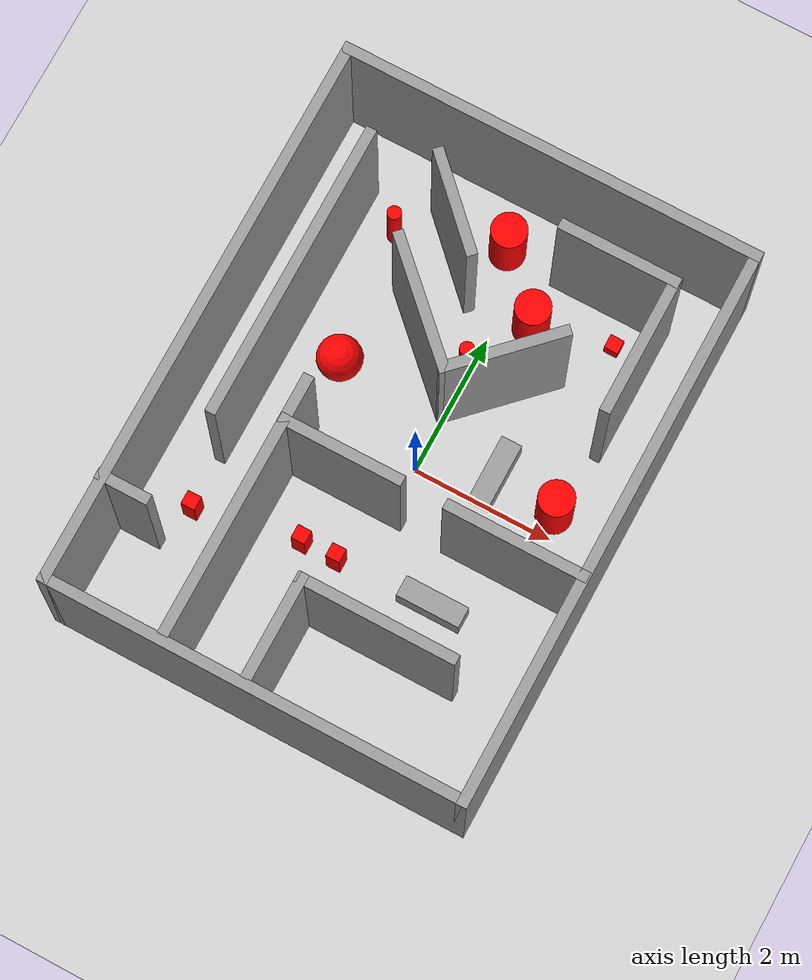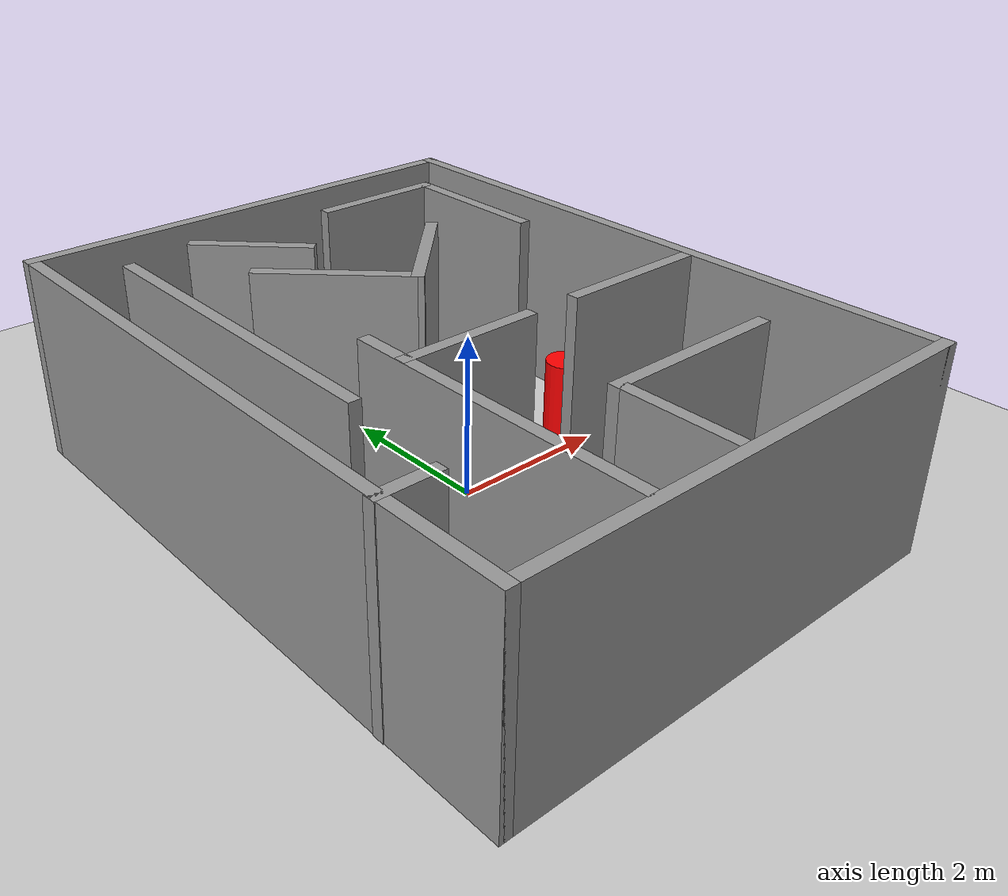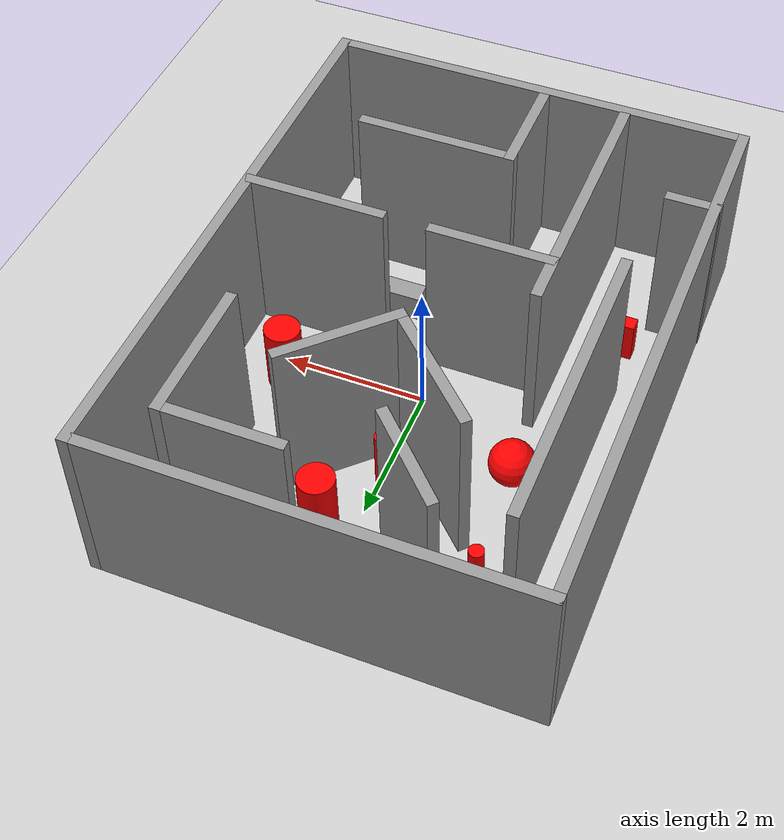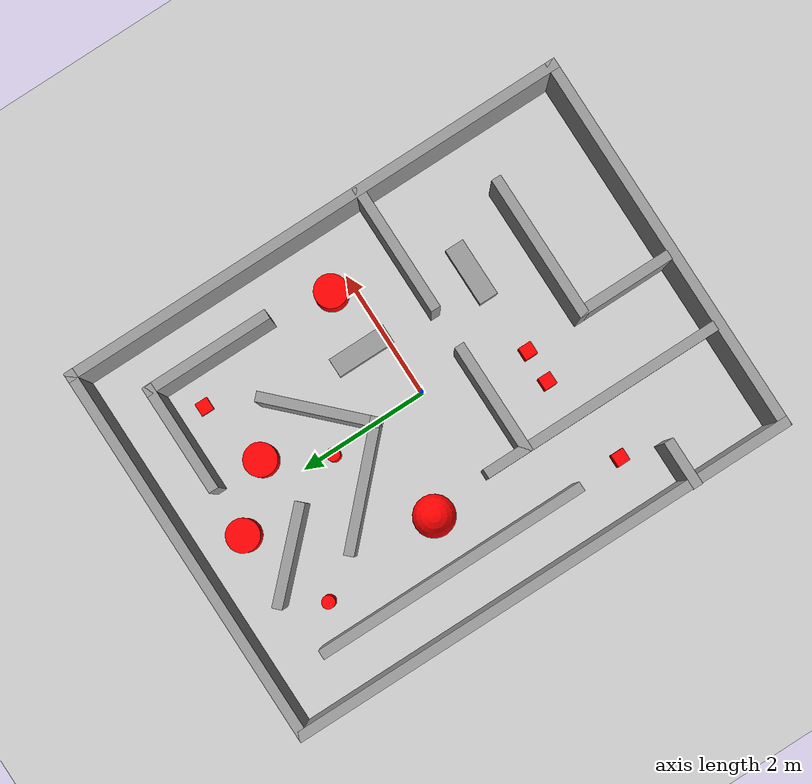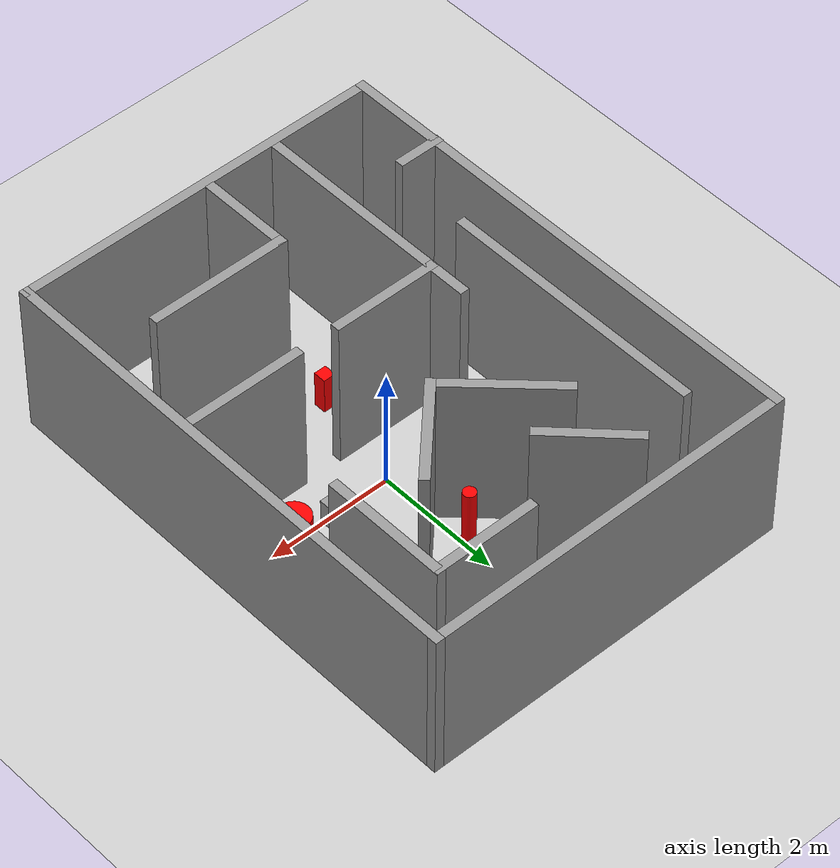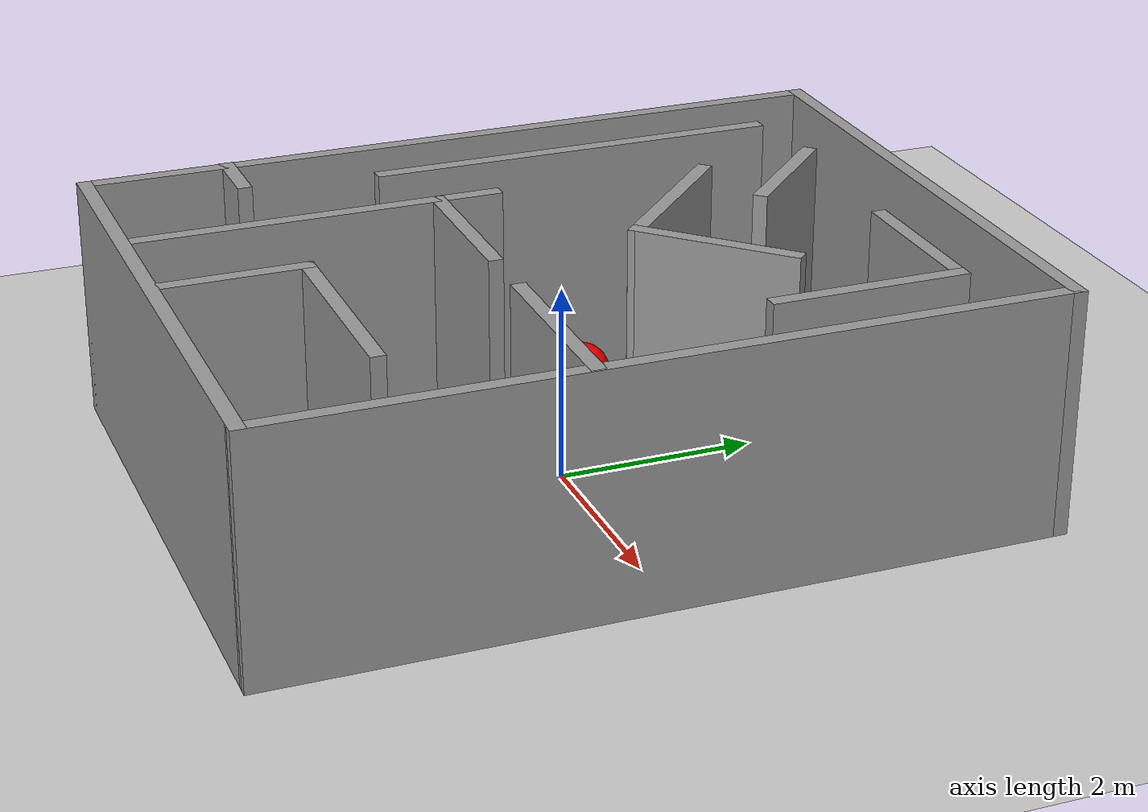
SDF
<sdf version="1.7">
 <world name="default">
  <light name="sun" type="directional">
   <pose>0 0 10 0 -0 0</pose>
   <diffuse>0.8 0.8 0.8 1</diffuse>
   <specular>0.2 0.2 0.2 1</specular>
   <attenuation>
    <range>1000</range>
    <constant>0.9</constant>
    <linear>0.01</linear>
    <quadratic>0.001</quadratic>
   </attenuation>
   <direction>-0.5 0.1 -0.9</direction>
   <spot><inner_angle>0</inner_angle><outer_angle>0</outer_angle><falloff>0</falloff></spot>
  </light>
  <model name="ground_plane">
   <static>1</static>
   <link name="link">
    <collision name="collision">
     <geometry><plane><normal>0 0 1</normal><size>100 100</size></plane></geometry>
     <surface>
      <contact><collide_bitmask>65535</collide_bitmask></contact>
      <friction><ode><mu>100</mu><mu2>50</mu2></ode></friction>
     </surface>
    </collision>
    <visual name="visual">
     <cast_shadows>0</cast_shadows>
     <geometry><plane><normal>0 0 1</normal><size>100 100</size></plane></geometry>
     <material>
      <script><uri>file://media/materials/scripts/gazebo.material</uri><name>Gazebo/Grey</name></script>
     </material>
    </visual>
   </link>
  </model>
  <gravity>0 0 -9.8</gravity>
  <magnetic_field>6e-06 2.3e-05 -4.2e-05</magnetic_field>
  <atmosphere type="adiabatic"/>
  <physics type="ode">
   <max_step_size>0.001</max_step_size>
   <real_time_factor>1</real_time_factor>
   <real_time_update_rate>1000</real_time_update_rate>
  </physics>
  <scene><ambient>0.4 0.4 0.4 1</ambient><background>0.7 0.7 0.7 1</background><shadows>1</shadows></scene>
  <spherical_coordinates>
   <surface_model>EARTH_WGS84</surface_model>
   <latitude_deg>0</latitude_deg>
   <longitude_deg>0</longitude_deg>
   <elevation>0</elevation>
   <heading_deg>0</heading_deg>
  </spherical_coordinates>
  <model name="env02">
   <pose>-0.178481 0.02134 0 0 -0 0</pose>
   <link name="Wall_13">
    <collision name="Wall_13_Collision">
     <geometry><box><size>1.5 0.15 2.5</size></box></geometry>
     <pose>0 0 1.25 0 -0 0</pose>
    </collision>
    <visual name="Wall_13_Visual">
     <pose>0 0 1.25 0 -0 0</pose>
     <geometry><box><size>1.5 0.15 2.5</size></box></geometry>
     <material>
      <script><uri>file://media/materials/scripts/gazebo.material</uri><name>Gazebo/Grey</name></script>
      <ambient>1 1 1 1</ambient>
     </material>
     <meta><layer>0</layer></meta>
    </visual>
    <pose>-0.751841 2.75701 0 0 -0 -0.785398</pose>
   </link>
   <link name="Wall_2">
    <collision name="Wall_2_Collision">
     <geometry><box><size>8 0.15 2.5</size></box></geometry>
     <pose>0 0 1.25 0 -0 0</pose>
    </collision>
    <visual name="Wall_2_Visual">
     <pose>0 0 1.25 0 -0 0</pose>
     <geometry><box><size>8 0.15 2.5</size></box></geometry>
     <material>
      <script><uri>file://media/materials/scripts/gazebo.material</uri><name>Gazebo/Grey</name></script>
      <ambient>1 1 1 1</ambient>
     </material>
     <meta><layer>0</layer></meta>
    </visual>
    <pose>-2.91996 -0 0 0 -0 -1.5708</pose>
   </link>
   <link name="Wall_22">
    <collision name="Wall_22_Collision">
     <geometry><box><size>2 0.15 2.5</size></box></geometry>
     <pose>0 0 1.25 0 -0 0</pose>
    </collision>
    <visual name="Wall_22_Visual">
     <pose>0 0 1.25 0 -0 0</pose>
     <geometry><box><size>2 0.15 2.5</size></box></geometry>
     <material>
      <script><uri>file://media/materials/scripts/gazebo.material</uri><name>Gazebo/Grey</name></script>
      <ambient>1 1 1 1</ambient>
     </material>
     <meta><layer>0</layer></meta>
    </visual>
    <pose>2.18448 2.2064 0 0 -0 -1.5708</pose>
   </link>
   <link name="Wall_24">
    <collision name="Wall_24_Collision">
     <geometry><box><size>1.70028 0.15 2.5</size></box></geometry>
     <pose>0 0 1.25 0 -0 0</pose>
    </collision>
    <visual name="Wall_24_Visual">
     <pose>0 0 1.25 0 -0 0</pose>
     <geometry><box><size>1.70028 0.15 2.5</size></box></geometry>
     <material>
      <script><uri>file://media/materials/scripts/gazebo.material</uri><name>Gazebo/Grey</name></script>
      <ambient>1 1 1 1</ambient>
     </material>
     <meta><layer>0</layer></meta>
    </visual>
    <pose>1.39939 3.13139 0 0 -0 3.14159</pose>
   </link>
   <link name="Wall_26">
    <collision name="Wall_26_Collision">
     <geometry><box><size>1.94682 0.15 2.5</size></box></geometry>
     <pose>0 0 1.25 0 -0 0</pose>
    </collision>
    <visual name="Wall_26_Visual">
     <pose>0 0 1.25 0 -0 0</pose>
     <geometry><box><size>1.94682 0.15 2.5</size></box></geometry>
     <material>
      <script><uri>file://media/materials/scripts/gazebo.material</uri><name>Gazebo/Grey</name></script>
      <ambient>1 1 1 1</ambient>
     </material>
     <meta><layer>0</layer></meta>
    </visual>
    <pose>-0.506792 1.39452 0 0 -0 -0.767543</pose>
   </link>
   <link name="Wall_27">
    <collision name="Wall_27_Collision">
     <geometry><box><size>1.75 0.15 2.5</size></box></geometry>
     <pose>0 0 1.25 0 -0 0</pose>
    </collision>
    <visual name="Wall_27_Visual">
     <pose>0 0 1.25 0 -0 0</pose>
     <geometry><box><size>1.75 0.15 2.5</size></box></geometry>
     <material>
      <script><uri>file://media/materials/scripts/gazebo.material</uri><name>Gazebo/Grey</name></script>
      <ambient>1 1 1 1</ambient>
     </material>
     <meta><layer>0</layer></meta>
    </visual>
    <pose>0.705406 1.33638 0 0 -0 0.785398</pose>
   </link>
   <link name="Wall_30">
    <collision name="Wall_30_Collision">
     <geometry><box><size>3.75 0.15 2.5</size></box></geometry>
     <pose>0 0 1.25 0 -0 0</pose>
    </collision>
    <visual name="Wall_30_Visual">
     <pose>0 0 1.25 0 -0 0</pose>
     <geometry><box><size>3.75 0.15 2.5</size></box></geometry>
     <material>
      <script><uri>file://media/materials/scripts/gazebo.material</uri><name>Gazebo/Grey</name></script>
      <ambient>1 1 1 1</ambient>
     </material>
     <meta><layer>0</layer></meta>
    </visual>
    <pose>-1.2845 -1.99005 0 0 -0 -1.5708</pose>
   </link>
   <link name="Wall_34">
    <collision name="Wall_34_Collision">
     <geometry><box><size>1.75 0.15 2.5</size></box></geometry>
     <pose>0 0 1.25 0 -0 0</pose>
    </collision>
    <visual name="Wall_34_Visual">
     <pose>0 0 1.25 0 -0 0</pose>
     <geometry><box><size>1.75 0.15 2.5</size></box></geometry>
     <material>
      <script><uri>file://media/materials/scripts/gazebo.material</uri><name>Gazebo/Grey</name></script>
      <ambient>1 1 1 1</ambient>
     </material>
     <meta><layer>0</layer></meta>
    </visual>
    <pose>-0.477153 -0.7658 0 0 -0 0</pose>
   </link>
   <link name="Wall_4">
    <collision name="Wall_4_Collision">
     <geometry><box><size>6 0.15 2.5</size></box></geometry>
     <pose>0 0 1.25 0 -0 0</pose>
    </collision>
    <visual name="Wall_4_Visual">
     <pose>0 0 1.25 0 -0 0</pose>
     <geometry><box><size>6 0.15 2.5</size></box></geometry>
     <material>
      <script><uri>file://media/materials/scripts/gazebo.material</uri><name>Gazebo/Grey</name></script>
      <ambient>1 1 1 1</ambient>
     </material>
     <meta><layer>0</layer></meta>
    </visual>
    <pose>0.005038 -3.925 0 0 -0 0</pose>
   </link>
   <link name="Wall_41">
    <collision name="Wall_41_Collision">
     <geometry><box><size>2 0.15 2.5</size></box></geometry>
     <pose>0 0 1.25 0 -0 0</pose>
    </collision>
    <visual name="Wall_41_Visual">
     <pose>0 0 1.25 0 -0 0</pose>
     <geometry><box><size>2 0.15 2.5</size></box></geometry>
     <material>
      <script><uri>file://media/materials/scripts/gazebo.material</uri><name>Gazebo/Grey</name></script>
      <ambient>1 1 1 1</ambient>
     </material>
     <meta><layer>0</layer></meta>
    </visual>
    <pose>1.9842 -0.766011 0 0 -0 0</pose>
   </link>
   <link name="Wall_43">
    <collision name="Wall_43_Collision">
     <geometry><box><size>2.25 0.15 2.5</size></box></geometry>
     <pose>0 0 1.25 0 -0 0</pose>
    </collision>
    <visual name="Wall_43_Visual">
     <pose>0 0 1.25 0 -0 0</pose>
     <geometry><box><size>2.25 0.15 2.5</size></box></geometry>
     <material>
      <script><uri>file://media/materials/scripts/gazebo.material</uri><name>Gazebo/Grey</name></script>
      <ambient>1 1 1 1</ambient>
     </material>
     <meta><layer>0</layer></meta>
    </visual>
    <pose>0.92532 -2.43655 0 0 -0 3.14159</pose>
   </link>
   <link name="Wall_44">
    <collision name="Wall_44_Collision">
     <geometry><box><size>1.5 0.15 2.5</size></box></geometry>
     <pose>0 0 1.25 0 -0 0</pose>
    </collision>
    <visual name="Wall_44_Visual">
     <pose>0 0 1.25 0 -0 0</pose>
     <geometry><box><size>1.5 0.15 2.5</size></box></geometry>
     <material>
      <script><uri>file://media/materials/scripts/gazebo.material</uri><name>Gazebo/Grey</name></script>
      <ambient>1 1 1 1</ambient>
     </material>
     <meta><layer>0</layer></meta>
    </visual>
    <pose>-0.12468 -3.11155 0 0 -0 -1.5708</pose>
   </link>
   <link name="Wall_46">
    <collision name="Wall_46_Collision">
     <geometry><box><size>0.75 0.15 2.5</size></box></geometry>
     <pose>0 0 1.25 0 -0 0</pose>
    </collision>
    <visual name="Wall_46_Visual">
     <pose>0 0 1.25 0 -0 0</pose>
     <geometry><box><size>0.75 0.15 2.5</size></box></geometry>
     <material>
      <script><uri>file://media/materials/scripts/gazebo.material</uri><name>Gazebo/Grey</name></script>
      <ambient>1 1 1 1</ambient>
     </material>
     <meta><layer>0</layer></meta>
    </visual>
    <pose>-2.63004 -2.46285 0 0 -0 0</pose>
   </link>
   <link name="Wall_5">
    <collision name="Wall_5_Collision">
     <geometry><box><size>8 0.15 2.5</size></box></geometry>
     <pose>0 0 1.25 0 -0 0</pose>
    </collision>
    <visual name="Wall_5_Visual">
     <pose>0 0 1.25 0 -0 0</pose>
     <geometry><box><size>8 0.15 2.5</size></box></geometry>
     <material>
      <script><uri>file://media/materials/scripts/gazebo.material</uri><name>Gazebo/Grey</name></script>
      <ambient>1 1 1 1</ambient>
     </material>
     <meta><layer>0</layer></meta>
    </visual>
    <pose>2.93004 -0 0 0 -0 1.5708</pose>
   </link>
   <link name="Wall_6">
    <collision name="Wall_6_Collision">
     <geometry><box><size>6 0.15 2.5</size></box></geometry>
     <pose>0 0 1.25 0 -0 0</pose>
    </collision>
    <visual name="Wall_6_Visual">
     <pose>0 0 1.25 0 -0 0</pose>
     <geometry><box><size>6 0.15 2.5</size></box></geometry>
     <material>
      <script><uri>file://media/materials/scripts/gazebo.material</uri><name>Gazebo/Grey</name></script>
      <ambient>1 1 1 1</ambient>
     </material>
     <meta><layer>0</layer></meta>
    </visual>
    <pose>0.005038 3.925 0 0 -0 3.14159</pose>
   </link>
   <link name="Wall_9">
    <collision name="Wall_9_Collision">
     <geometry><box><size>4.25 0.15 2.5</size></box></geometry>
     <pose>0 0 1.25 0 -0 0</pose>
    </collision>
    <visual name="Wall_9_Visual">
     <pose>0 0 1.25 0 -0 0</pose>
     <geometry><box><size>4.25 0.15 2.5</size></box></geometry>
     <material>
      <script><uri>file://media/materials/scripts/gazebo.material</uri><name>Gazebo/Grey</name></script>
      <ambient>1 1 1 1</ambient>
     </material>
     <meta><layer>0</layer></meta>
    </visual>
    <pose>-2.13988 0.993974 0 0 -0 -1.5708</pose>
   </link>
   <static>1</static>
  </model>
  <model name="sphere_r">
   <link name="link_1">
    <pose>0 0 0.1 0 -0 0</pose>
    <inertial>
     <mass>31.7115</mass>
     <inertia><ixx>1.2708</ixx><ixy>0</ixy><ixz>0</ixz><iyy>1.2708</iyy><iyz>0</iyz><izz>1.2708</izz></inertia>
    </inertial>
    <visual name="visual">
     <geometry><sphere><radius>0.316519</radius></sphere></geometry>
     <material>
      <lighting>1</lighting>
      <script><uri>file://media/materials/scripts/gazebo.material</uri><name>Gazebo/Grey</name></script>
      <ambient>1 0 0 1</ambient>
      <diffuse>1 0 0 1</diffuse>
      <specular>0 0 0 1</specular>
      <emissive>0 0 0 1</emissive>
      <shader type="vertex"><normal_map>__default__</normal_map></shader>
     </material>
    </visual>
    <collision name="collision">
     <geometry><sphere><radius>0.316519</radius></sphere></geometry>
     <surface>
      <friction>
       <ode><mu>1</mu><mu2>1</mu2><fdir1>0 0 0</fdir1><slip1>0</slip1><slip2>0</slip2></ode>
       <torsional>
        <coefficient>1</coefficient>
        <patch_radius>0</patch_radius>
        <surface_radius>0</surface_radius>
        <use_patch_radius>1</use_patch_radius>
        <ode><slip>0</slip></ode>
       </torsional>
      </friction>
      <bounce><restitution_coefficient>0</restitution_coefficient><threshold>1e+06</threshold></bounce>
      <contact>
       <collide_without_contact>0</collide_without_contact>
       <collide_without_contact_bitmask>1</collide_without_contact_bitmask>
       <collide_bitmask>1</collide_bitmask>
       <ode>
        <soft_cfm>0</soft_cfm>
        <soft_erp>0.2</soft_erp>
        <kp>1e+13</kp>
        <kd>1</kd>
        <max_vel>0.01</max_vel>
        <min_depth>0</min_depth>
       </ode>
       <bullet>
        <split_impulse>1</split_impulse>
        <split_impulse_penetration_threshold>-0.01</split_impulse_penetration_threshold>
        <soft_cfm>0</soft_cfm>
        <soft_erp>0.2</soft_erp>
        <kp>1e+13</kp>
        <kd>1</kd>
       </bullet>
      </contact>
     </surface>
    </collision>
   </link>
   <static>1</static>
   <pose>-1.56131 0.805415 0.215721 0 -0 0</pose>
  </model>
  <model name="Box_36x15W">
   <link name="Wall">
    <pose>0 0 0.1985 0 -0 0</pose>
    <inertial>
     <mass>5</mass>
     <inertia><ixx>0.1022</ixx><iyy>0.4107</iyy><izz>0.3815</izz><ixy>0</ixy><ixz>0</ixz><iyz>0</iyz></inertia>
    </inertial>
    <collision name="Wall_Collision"><geometry><box><size>0.91 0.296 0.397</size></box></geometry></collision>
    <visual name="Wall_Visual">
     <geometry><box><size>0.91 0.296 0.397</size></box></geometry>
     <material>
      <script><uri>file://media/materials/scripts/gazebo.material</uri><name>Gazebo/Grey</name></script>
      <ambient>1 1 1 1</ambient>
     </material>
    </visual>
   </link>
   <static>1</static>
   <pose>1.06355 -1.51763 0 0 -0 0</pose>
  </model>
  <model name="Box_36x15W_0">
   <link name="Wall">
    <pose>0 0 0.1985 0 -0 0</pose>
    <inertial>
     <mass>5</mass>
     <inertia><ixx>0.1022</ixx><iyy>0.4107</iyy><izz>0.3815</izz><ixy>0</ixy><ixz>0</ixz><iyz>0</iyz></inertia>
    </inertial>
    <collision name="Wall_Collision"><geometry><box><size>0.91 0.296 0.397</size></box></geometry></collision>
    <visual name="Wall_Visual">
     <geometry><box><size>0.91 0.296 0.397</size></box></geometry>
     <material>
      <script><uri>file://media/materials/scripts/gazebo.material</uri><name>Gazebo/Grey</name></script>
      <ambient>1 1 1 1</ambient>
     </material>
    </visual>
   </link>
   <static>1</static>
   <pose>0.969371 0.40142 0 0 0 -1.5708</pose>
  </model>
  <model name="unit_cylinder_025">
   <link name="link">
    <inertial>
     <mass>1</mass>
     <inertia><ixx>0.145833</ixx><ixy>0</ixy><ixz>0</ixz><iyy>0.145833</iyy><iyz>0</iyz><izz>0.125</izz></inertia>
    </inertial>
    <visual name="visual">
     <geometry><cylinder><radius>0.25</radius><length>1</length></cylinder></geometry>
     <material>
      <script><name>Gazebo/Grey</name><uri>file://media/materials/scripts/gazebo.material</uri></script>
      <shader type="pixel"><normal_map>__default__</normal_map></shader>
      <ambient>1 0 0 1</ambient>
      <diffuse>0.7 0.7 0.7 1</diffuse>
      <specular>0.01 0.01 0.01 1</specular>
      <emissive>0 0 0 1</emissive>
     </material>
    </visual>
    <collision name="collision">
     <geometry><cylinder><radius>0.25</radius><length>1</length></cylinder></geometry>
     <surface>
      <friction>
       <ode><mu>1</mu><mu2>1</mu2><fdir1>0 0 0</fdir1><slip1>0</slip1><slip2>0</slip2></ode>
       <torsional>
        <coefficient>1</coefficient>
        <patch_radius>0</patch_radius>
        <surface_radius>0</surface_radius>
        <use_patch_radius>1</use_patch_radius>
        <ode><slip>0</slip></ode>
       </torsional>
      </friction>
      <bounce><restitution_coefficient>0</restitution_coefficient><threshold>1e+06</threshold></bounce>
      <contact>
       <collide_without_contact>0</collide_without_contact>
       <collide_without_contact_bitmask>1</collide_without_contact_bitmask>
       <collide_bitmask>1</collide_bitmask>
       <ode>
        <soft_cfm>0</soft_cfm>
        <soft_erp>0.2</soft_erp>
        <kp>1e+13</kp>
        <kd>1</kd>
        <max_vel>0.01</max_vel>
        <min_depth>0</min_depth>
       </ode>
       <bullet>
        <split_impulse>1</split_impulse>
        <split_impulse_penetration_threshold>-0.01</split_impulse_penetration_threshold>
        <soft_cfm>0</soft_cfm>
        <soft_erp>0.2</soft_erp>
        <kp>1e+13</kp>
        <kd>1</kd>
       </bullet>
      </contact>
     </surface>
    </collision>
   </link>
   <static>0</static>
   <pose>1.88423 0.313244 0.499992 -1e-06 1e-06 1e-06</pose>
  </model>
  <model name="unit_cylinder_025_clone">
   <link name="link">
    <inertial>
     <mass>1</mass>
     <inertia><ixx>0.145833</ixx><ixy>0</ixy><ixz>0</ixz><iyy>0.145833</iyy><iyz>0</iyz><izz>0.125</izz></inertia>
    </inertial>
    <visual name="visual">
     <geometry><cylinder><radius>0.25</radius><length>1</length></cylinder></geometry>
     <material>
      <script><name>Gazebo/Grey</name><uri>file://media/materials/scripts/gazebo.material</uri></script>
      <shader type="pixel"><normal_map>__default__</normal_map></shader>
      <ambient>1 0 0 1</ambient>
      <diffuse>0.7 0.7 0.7 1</diffuse>
      <specular>0.01 0.01 0.01 1</specular>
      <emissive>0 0 0 1</emissive>
     </material>
    </visual>
    <collision name="collision">
     <geometry><cylinder><radius>0.25</radius><length>1</length></cylinder></geometry>
     <surface>
      <friction>
       <ode><mu>1</mu><mu2>1</mu2><fdir1>0 0 0</fdir1><slip1>0</slip1><slip2>0</slip2></ode>
       <torsional>
        <coefficient>1</coefficient>
        <patch_radius>0</patch_radius>
        <surface_radius>0</surface_radius>
        <use_patch_radius>1</use_patch_radius>
        <ode><slip>0</slip></ode>
       </torsional>
      </friction>
      <bounce><restitution_coefficient>0</restitution_coefficient><threshold>1e+06</threshold></bounce>
      <contact>
       <collide_without_contact>0</collide_without_contact>
       <collide_without_contact_bitmask>1</collide_without_contact_bitmask>
       <collide_bitmask>1</collide_bitmask>
       <ode>
        <soft_cfm>0</soft_cfm>
        <soft_erp>0.2</soft_erp>
        <kp>1e+13</kp>
        <kd>1</kd>
        <max_vel>0.01</max_vel>
        <min_depth>0</min_depth>
       </ode>
       <bullet>
        <split_impulse>1</split_impulse>
        <split_impulse_penetration_threshold>-0.01</split_impulse_penetration_threshold>
        <soft_cfm>0</soft_cfm>
        <soft_erp>0.2</soft_erp>
        <kp>1e+13</kp>
        <kd>1</kd>
       </bullet>
      </contact>
     </surface>
    </collision>
   </link>
   <static>0</static>
   <pose>-0.332297 3.21196 0.499992 -1e-06 1e-06 1e-06</pose>
  </model>
  <model name="unit_cylinder_01_clone">
   <link name="link">
    <inertial>
     <mass>1</mass>
     <inertia><ixx>0.145833</ixx><ixy>0</ixy><ixz>0</ixz><iyy>0.145833</iyy><iyz>0</iyz><izz>0.125</izz></inertia>
    </inertial>
    <visual name="visual">
     <geometry><cylinder><radius>0.1</radius><length>1</length></cylinder></geometry>
     <material>
      <script><name>Gazebo/Grey</name><uri>file://media/materials/scripts/gazebo.material</uri></script>
      <shader type="pixel"><normal_map>__default__</normal_map></shader>
      <ambient>1 0 0 1</ambient>
      <diffuse>0.7 0.7 0.7 1</diffuse>
      <specular>0.01 0.01 0.01 1</specular>
      <emissive>0 0 0 1</emissive>
     </material>
    </visual>
    <collision name="collision">
     <geometry><cylinder><radius>0.1</radius><length>1</length></cylinder></geometry>
     <surface>
      <friction>
       <ode><mu>1</mu><mu2>1</mu2><fdir1>0 0 0</fdir1><slip1>0</slip1><slip2>0</slip2></ode>
       <torsional>
        <coefficient>1</coefficient>
        <patch_radius>0</patch_radius>
        <surface_radius>0</surface_radius>
        <use_patch_radius>1</use_patch_radius>
        <ode><slip>0</slip></ode>
       </torsional>
      </friction>
      <bounce><restitution_coefficient>0</restitution_coefficient><threshold>1e+06</threshold></bounce>
      <contact>
       <collide_without_contact>0</collide_without_contact>
       <collide_without_contact_bitmask>1</collide_without_contact_bitmask>
       <collide_bitmask>1</collide_bitmask>
       <ode>
        <soft_cfm>0</soft_cfm>
        <soft_erp>0.2</soft_erp>
        <kp>1e+13</kp>
        <kd>1</kd>
        <max_vel>0.01</max_vel>
        <min_depth>0</min_depth>
       </ode>
       <bullet>
        <split_impulse>1</split_impulse>
        <split_impulse_penetration_threshold>-0.01</split_impulse_penetration_threshold>
        <soft_cfm>0</soft_cfm>
        <soft_erp>0.2</soft_erp>
        <kp>1e+13</kp>
        <kd>1</kd>
       </bullet>
      </contact>
     </surface>
    </collision>
   </link>
   <static>0</static>
   <pose>-0.064159 1.52882 0.499991 0 0 -3e-06</pose>
  </model>
  <model name="unit_cylinder_01_clone_0">
   <link name="link">
    <inertial>
     <mass>1</mass>
     <inertia><ixx>0.145833</ixx><ixy>0</ixy><ixz>0</ixz><iyy>0.145833</iyy><iyz>0</iyz><izz>0.125</izz></inertia>
    </inertial>
    <visual name="visual">
     <geometry><cylinder><radius>0.1</radius><length>1</length></cylinder></geometry>
     <material>
      <script><name>Gazebo/Grey</name><uri>file://media/materials/scripts/gazebo.material</uri></script>
      <shader type="pixel"><normal_map>__default__</normal_map></shader>
      <ambient>1 0 0 1</ambient>
      <diffuse>0.7 0.7 0.7 1</diffuse>
      <specular>0.01 0.01 0.01 1</specular>
      <emissive>0 0 0 1</emissive>
     </material>
    </visual>
    <collision name="collision">
     <geometry><cylinder><radius>0.1</radius><length>1</length></cylinder></geometry>
     <surface>
      <friction>
       <ode><mu>1</mu><mu2>1</mu2><fdir1>0 0 0</fdir1><slip1>0</slip1><slip2>0</slip2></ode>
       <torsional>
        <coefficient>1</coefficient>
        <patch_radius>0</patch_radius>
        <surface_radius>0</surface_radius>
        <use_patch_radius>1</use_patch_radius>
        <ode><slip>0</slip></ode>
       </torsional>
      </friction>
      <bounce><restitution_coefficient>0</restitution_coefficient><threshold>1e+06</threshold></bounce>
      <contact>
       <collide_without_contact>0</collide_without_contact>
       <collide_without_contact_bitmask>1</collide_without_contact_bitmask>
       <collide_bitmask>1</collide_bitmask>
       <ode>
        <soft_cfm>0</soft_cfm>
        <soft_erp>0.2</soft_erp>
        <kp>1e+13</kp>
        <kd>1</kd>
        <max_vel>0.01</max_vel>
        <min_depth>0</min_depth>
       </ode>
       <bullet>
        <split_impulse>1</split_impulse>
        <split_impulse_penetration_threshold>-0.01</split_impulse_penetration_threshold>
        <soft_cfm>0</soft_cfm>
        <soft_erp>0.2</soft_erp>
        <kp>1e+13</kp>
        <kd>1</kd>
       </bullet>
      </contact>
     </surface>
    </collision>
   </link>
   <static>0</static>
   <pose>-1.76891 2.71092 0.499999 0 0 -3e-06</pose>
  </model>
  <model name="unit_box_02_clone_1">
   <link name="link">
    <inertial>
     <mass>1</mass>
     <inertia>
      <ixx>0.166667</ixx>
      <ixy>0</ixy>
      <ixz>0</ixz>
      <iyy>0.166667</iyy>
      <iyz>0</iyz>
      <izz>0.166667</izz>
     </inertia>
    </inertial>
    <visual name="visual">
     <geometry><box><size>0.2 0.2 0.2</size></box></geometry>
     <material>
      <script><name>Gazebo/Grey</name><uri>file://media/materials/scripts/gazebo.material</uri></script>
      <shader type="pixel"><normal_map>__default__</normal_map></shader>
      <ambient>1 0 0 1</ambient>
      <diffuse>0.7 0.7 0.7 1</diffuse>
      <specular>0.01 0.01 0.01 1</specular>
      <emissive>0 0 0 1</emissive>
     </material>
    </visual>
    <collision name="collision">
     <geometry><box><size>0.2 0.2 0.2</size></box></geometry>
     <surface>
      <friction>
       <ode><mu>1</mu><mu2>1</mu2><fdir1>0 0 0</fdir1><slip1>0</slip1><slip2>0</slip2></ode>
       <torsional>
        <coefficient>1</coefficient>
        <patch_radius>0</patch_radius>
        <surface_radius>0</surface_radius>
        <use_patch_radius>1</use_patch_radius>
        <ode><slip>0</slip></ode>
       </torsional>
      </friction>
      <bounce><restitution_coefficient>0</restitution_coefficient><threshold>1e+06</threshold></bounce>
      <contact>
       <collide_without_contact>0</collide_without_contact>
       <collide_without_contact_bitmask>1</collide_without_contact_bitmask>
       <collide_bitmask>1</collide_bitmask>
       <ode>
        <soft_cfm>0</soft_cfm>
        <soft_erp>0.2</soft_erp>
        <kp>1e+13</kp>
        <kd>1</kd>
        <max_vel>0.01</max_vel>
        <min_depth>0</min_depth>
       </ode>
       <bullet>
        <split_impulse>1</split_impulse>
        <split_impulse_penetration_threshold>-0.01</split_impulse_penetration_threshold>
        <soft_cfm>0</soft_cfm>
        <soft_erp>0.2</soft_erp>
        <kp>1e+13</kp>
        <kd>1</kd>
       </bullet>
      </contact>
     </surface>
    </collision>
   </link>
   <static>0</static>
   <pose>1.52386 2.7095 0.1 1e-06 -3e-06 1e-06</pose>
  </model>
  <model name="unit_box_02_0">
   <link name="link">
    <inertial>
     <mass>1</mass>
     <inertia>
      <ixx>0.166667</ixx>
      <ixy>0</ixy>
      <ixz>0</ixz>
      <iyy>0.166667</iyy>
      <iyz>0</iyz>
      <izz>0.166667</izz>
     </inertia>
    </inertial>
    <visual name="visual">
     <geometry><box><size>0.2 0.2 1</size></box></geometry>
     <material>
      <script><name>Gazebo/Grey</name><uri>file://media/materials/scripts/gazebo.material</uri></script>
      <shader type="pixel"><normal_map>__default__</normal_map></shader>
      <ambient>1 0 0 1</ambient>
      <diffuse>0.7 0.7 0.7 1</diffuse>
      <specular>0.01 0.01 0.01 1</specular>
      <emissive>0 0 0 1</emissive>
     </material>
    </visual>
    <collision name="collision">
     <geometry><box><size>0.2 0.2 1</size></box></geometry>
     <surface>
      <friction>
       <ode><mu>1</mu><mu2>1</mu2><fdir1>0 0 0</fdir1><slip1>0</slip1><slip2>0</slip2></ode>
       <torsional>
        <coefficient>1</coefficient>
        <patch_radius>0</patch_radius>
        <surface_radius>0</surface_radius>
        <use_patch_radius>1</use_patch_radius>
        <ode><slip>0</slip></ode>
       </torsional>
      </friction>
      <bounce><restitution_coefficient>0</restitution_coefficient><threshold>1e+06</threshold></bounce>
      <contact>
       <collide_without_contact>0</collide_without_contact>
       <collide_without_contact_bitmask>1</collide_without_contact_bitmask>
       <collide_bitmask>1</collide_bitmask>
       <ode>
        <soft_cfm>0</soft_cfm>
        <soft_erp>0.2</soft_erp>
        <kp>1e+13</kp>
        <kd>1</kd>
        <max_vel>0.01</max_vel>
        <min_depth>0</min_depth>
       </ode>
       <bullet>
        <split_impulse>1</split_impulse>
        <split_impulse_penetration_threshold>-0.01</split_impulse_penetration_threshold>
        <soft_cfm>0</soft_cfm>
        <soft_erp>0.2</soft_erp>
        <kp>1e+13</kp>
        <kd>1</kd>
       </bullet>
      </contact>
     </surface>
    </collision>
   </link>
   <static>0</static>
   <pose>-0.31724 -1.577 0.1 1e-06 -4e-06 2e-06</pose>
  </model>
  <model name="unit_box_02_0_clone">
   <link name="link">
    <inertial>
     <mass>1</mass>
     <inertia>
      <ixx>0.166667</ixx>
      <ixy>0</ixy>
      <ixz>0</ixz>
      <iyy>0.166667</iyy>
      <iyz>0</iyz>
      <izz>0.166667</izz>
     </inertia>
    </inertial>
    <visual name="visual">
     <geometry><box><size>0.2 0.2 1</size></box></geometry>
     <material>
      <script><name>Gazebo/Grey</name><uri>file://media/materials/scripts/gazebo.material</uri></script>
      <shader type="pixel"><normal_map>__default__</normal_map></shader>
      <ambient>1 0 0 1</ambient>
      <diffuse>0.7 0.7 0.7 1</diffuse>
      <specular>0.01 0.01 0.01 1</specular>
      <emissive>0 0 0 1</emissive>
     </material>
    </visual>
    <collision name="collision">
     <geometry><box><size>0.2 0.2 1</size></box></geometry>
     <surface>
      <friction>
       <ode><mu>1</mu><mu2>1</mu2><fdir1>0 0 0</fdir1><slip1>0</slip1><slip2>0</slip2></ode>
       <torsional>
        <coefficient>1</coefficient>
        <patch_radius>0</patch_radius>
        <surface_radius>0</surface_radius>
        <use_patch_radius>1</use_patch_radius>
        <ode><slip>0</slip></ode>
       </torsional>
      </friction>
      <bounce><restitution_coefficient>0</restitution_coefficient><threshold>1e+06</threshold></bounce>
      <contact>
       <collide_without_contact>0</collide_without_contact>
       <collide_without_contact_bitmask>1</collide_without_contact_bitmask>
       <collide_bitmask>1</collide_bitmask>
       <ode>
        <soft_cfm>0</soft_cfm>
        <soft_erp>0.2</soft_erp>
        <kp>1e+13</kp>
        <kd>1</kd>
        <max_vel>0.01</max_vel>
        <min_depth>0</min_depth>
       </ode>
       <bullet>
        <split_impulse>1</split_impulse>
        <split_impulse_penetration_threshold>-0.01</split_impulse_penetration_threshold>
        <soft_cfm>0</soft_cfm>
        <soft_erp>0.2</soft_erp>
        <kp>1e+13</kp>
        <kd>1</kd>
       </bullet>
      </contact>
     </surface>
    </collision>
   </link>
   <static>0</static>
   <pose>-0.825529 -1.57691 0.1 1e-06 -4e-06 2e-06</pose>
  </model>
  <model name="unit_box_02_0_clone_0">
   <link name="link">
    <inertial>
     <mass>1</mass>
     <inertia>
      <ixx>0.166667</ixx>
      <ixy>0</ixy>
      <ixz>0</ixz>
      <iyy>0.166667</iyy>
      <iyz>0</iyz>
      <izz>0.166667</izz>
     </inertia>
    </inertial>
    <visual name="visual">
     <geometry><box><size>0.2 0.2 1</size></box></geometry>
     <material>
      <script><name>Gazebo/Grey</name><uri>file://media/materials/scripts/gazebo.material</uri></script>
      <shader type="pixel"><normal_map>__default__</normal_map></shader>
      <ambient>1 0 0 1</ambient>
      <diffuse>0.7 0.7 0.7 1</diffuse>
      <specular>0.01 0.01 0.01 1</specular>
      <emissive>0 0 0 1</emissive>
     </material>
    </visual>
    <collision name="collision">
     <geometry><box><size>0.2 0.2 1</size></box></geometry>
     <surface>
      <friction>
       <ode><mu>1</mu><mu2>1</mu2><fdir1>0 0 0</fdir1><slip1>0</slip1><slip2>0</slip2></ode>
       <torsional>
        <coefficient>1</coefficient>
        <patch_radius>0</patch_radius>
        <surface_radius>0</surface_radius>
        <use_patch_radius>1</use_patch_radius>
        <ode><slip>0</slip></ode>
       </torsional>
      </friction>
      <bounce><restitution_coefficient>0</restitution_coefficient><threshold>1e+06</threshold></bounce>
      <contact>
       <collide_without_contact>0</collide_without_contact>
       <collide_without_contact_bitmask>1</collide_without_contact_bitmask>
       <collide_bitmask>1</collide_bitmask>
       <ode>
        <soft_cfm>0</soft_cfm>
        <soft_erp>0.2</soft_erp>
        <kp>1e+13</kp>
        <kd>1</kd>
        <max_vel>0.01</max_vel>
        <min_depth>0</min_depth>
       </ode>
       <bullet>
        <split_impulse>1</split_impulse>
        <split_impulse_penetration_threshold>-0.01</split_impulse_penetration_threshold>
        <soft_cfm>0</soft_cfm>
        <soft_erp>0.2</soft_erp>
        <kp>1e+13</kp>
        <kd>1</kd>
       </bullet>
      </contact>
     </surface>
    </collision>
   </link>
   <static>0</static>
   <pose>-2.2968 -1.85368 0.1 1e-06 -4e-06 2e-06</pose>
  </model>
  <model name="unit_cylinder_025_clone_clone">
   <link name="link">
    <inertial>
     <mass>1</mass>
     <inertia><ixx>0.145833</ixx><ixy>0</ixy><ixz>0</ixz><iyy>0.145833</iyy><iyz>0</iyz><izz>0.125</izz></inertia>
    </inertial>
    <visual name="visual">
     <geometry><cylinder><radius>0.25</radius><length>1</length></cylinder></geometry>
     <material>
      <script><name>Gazebo/Grey</name><uri>file://media/materials/scripts/gazebo.material</uri></script>
      <shader type="pixel"><normal_map>__default__</normal_map></shader>
      <ambient>1 0 0 1</ambient>
      <diffuse>0.7 0.7 0.7 1</diffuse>
      <specular>0.01 0.01 0.01 1</specular>
      <emissive>0 0 0 1</emissive>
     </material>
    </visual>
    <collision name="collision">
     <geometry><cylinder><radius>0.25</radius><length>1</length></cylinder></geometry>
     <surface>
      <friction>
       <ode><mu>1</mu><mu2>1</mu2><fdir1>0 0 0</fdir1><slip1>0</slip1><slip2>0</slip2></ode>
       <torsional>
        <coefficient>1</coefficient>
        <patch_radius>0</patch_radius>
        <surface_radius>0</surface_radius>
        <use_patch_radius>1</use_patch_radius>
        <ode><slip>0</slip></ode>
       </torsional>
      </friction>
      <bounce><restitution_coefficient>0</restitution_coefficient><threshold>1e+06</threshold></bounce>
      <contact>
       <collide_without_contact>0</collide_without_contact>
       <collide_without_contact_bitmask>1</collide_without_contact_bitmask>
       <collide_bitmask>1</collide_bitmask>
       <ode>
        <soft_cfm>0</soft_cfm>
        <soft_erp>0.2</soft_erp>
        <kp>1e+13</kp>
        <kd>1</kd>
        <max_vel>0.01</max_vel>
        <min_depth>0</min_depth>
       </ode>
       <bullet>
        <split_impulse>1</split_impulse>
        <split_impulse_penetration_threshold>-0.01</split_impulse_penetration_threshold>
        <soft_cfm>0</soft_cfm>
        <soft_erp>0.2</soft_erp>
        <kp>1e+13</kp>
        <kd>1</kd>
       </bullet>
      </contact>
     </surface>
    </collision>
   </link>
   <static>0</static>
   <pose>0.431384 2.42988 0.5 0 -0 1e-06</pose>
  </model>
 </world>
</sdf>
